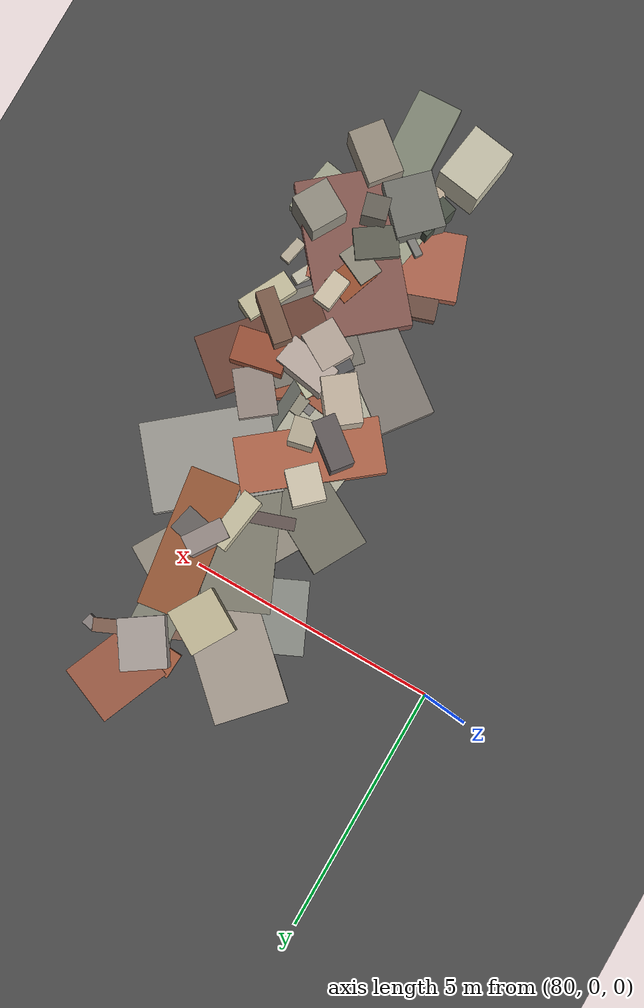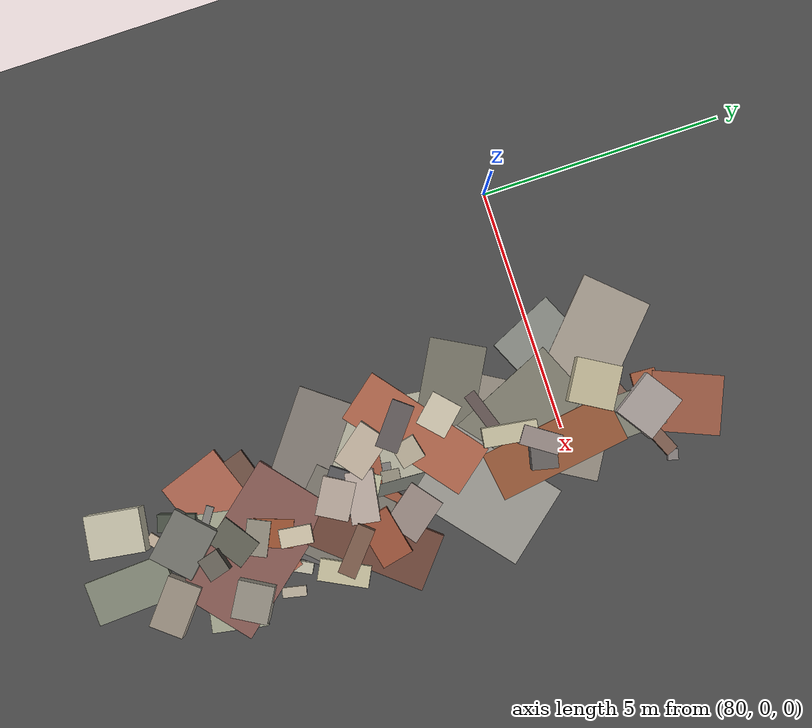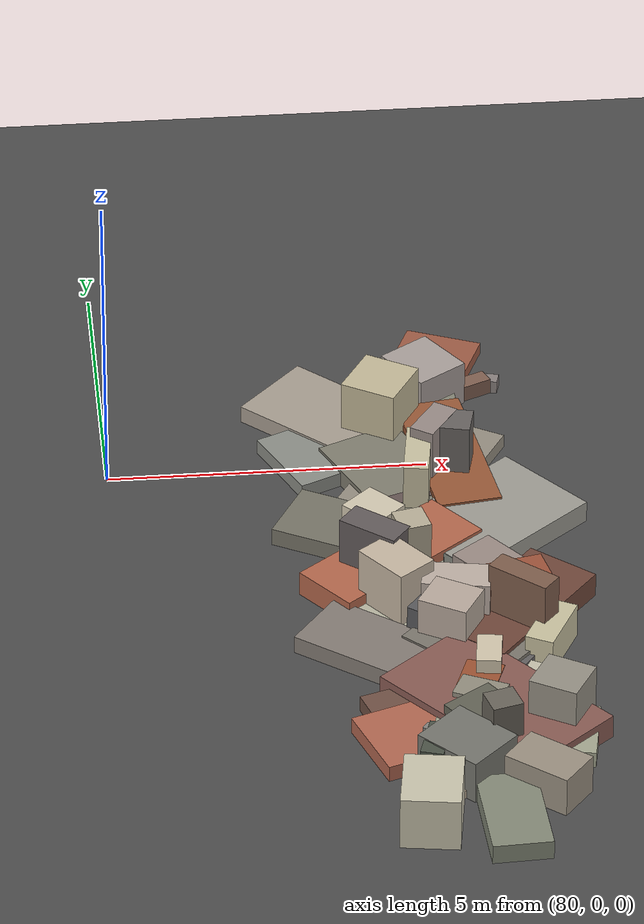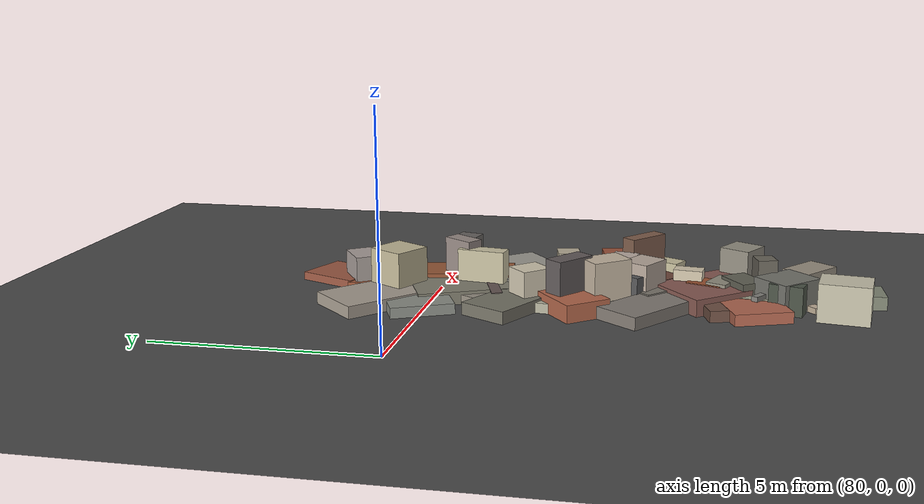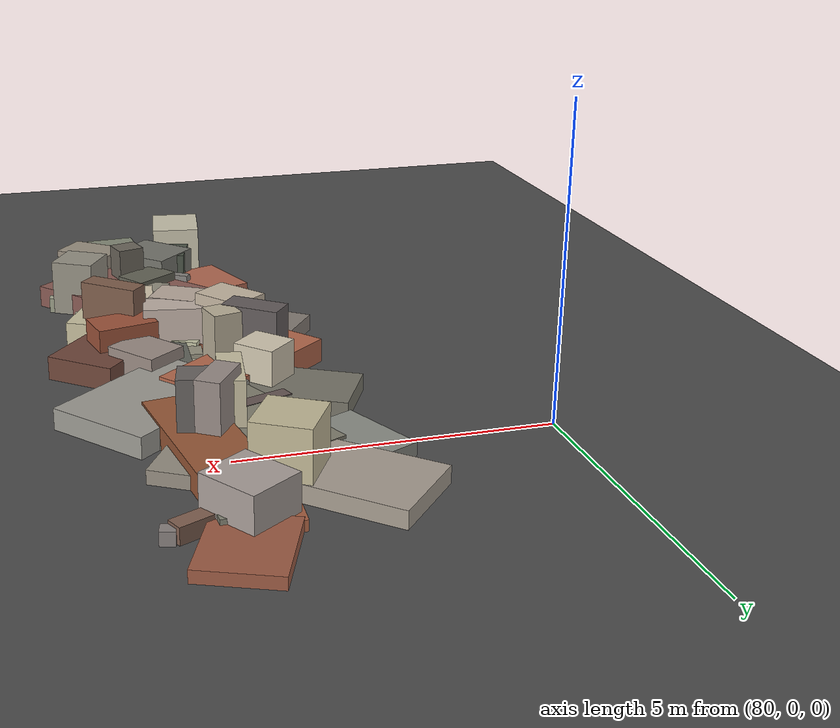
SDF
<sdf version="1.6">
 <world name="navitas_arena">
  <model name="ground_plane">
   <static>true</static>
   <link name="link">
    <collision name="collision">
     <geometry><plane><normal>0 0 1</normal><size>400 400</size></plane></geometry>
     <surface><friction><ode><mu>0.800</mu><mu2>0.800</mu2></ode></friction></surface>
    </collision>
    <visual name="visual">
     <cast_shadows>false</cast_shadows>
     <geometry><plane><normal>0 0 1</normal><size>400 400</size></plane></geometry>
     <material>
      <specular>0.04 0.04 0.04 1</specular>
      <script>
       <uri>file://media/materials/scripts/navitas_asphalt.material</uri>
       <name>Navitas/RealArenaAsphalt</name>
      </script>
     </material>
    </visual>
   </link>
  </model>
  <model name="deb_zor_17">
   <static>true</static>
   <pose>85.336 -7.135 0.000 0 0 0</pose>
   <link name="link">
    <collision name="col_0">
     <pose>-0.490 -0.852 0.349 0.000 0.000 2.342</pose>
     <geometry><box><size>1.116 0.963 0.698</size></box></geometry>
    </collision>
    <visual name="vis_0">
     <pose>-0.490 -0.852 0.349 0.000 0.000 2.342</pose>
     <geometry><box><size>1.116 0.963 0.698</size></box></geometry>
     <material>
      <ambient>0.43 0.43 0.40 1</ambient>
      <diffuse>0.46 0.46 0.43 1</diffuse>
      <specular>0.05 0.05 0.045 1</specular>
     </material>
    </visual>
    <collision name="col_1">
     <pose>-0.131 0.920 0.205 0.000 0.000 2.794</pose>
     <geometry><box><size>0.585 0.825 0.410</size></box></geometry>
    </collision>
    <visual name="vis_1">
     <pose>-0.131 0.920 0.205 0.000 0.000 2.794</pose>
     <geometry><box><size>0.585 0.825 0.410</size></box></geometry>
     <material>
      <ambient>0.57 0.31 0.18 1</ambient>
      <diffuse>0.62 0.33 0.20 1</diffuse>
      <specular>0.05 0.05 0.045 1</specular>
     </material>
    </visual>
    <collision name="col_2">
     <pose>0.217 0.662 0.092 0.000 0.000 2.014</pose>
     <geometry><box><size>0.516 0.419 0.183</size></box></geometry>
    </collision>
    <visual name="vis_2">
     <pose>0.217 0.662 0.092 0.000 0.000 2.014</pose>
     <geometry><box><size>0.516 0.419 0.183</size></box></geometry>
     <material>
      <ambient>0.44 0.33 0.27 1</ambient>
      <diffuse>0.47 0.36 0.29 1</diffuse>
      <specular>0.05 0.05 0.045 1</specular>
     </material>
    </visual>
    <collision name="col_3">
     <pose>0.300 0.643 0.067 0.000 0.000 1.648</pose>
     <geometry><box><size>0.379 0.305 0.133</size></box></geometry>
    </collision>
    <visual name="vis_3">
     <pose>0.300 0.643 0.067 0.000 0.000 1.648</pose>
     <geometry><box><size>0.379 0.305 0.133</size></box></geometry>
     <material>
      <ambient>0.76 0.72 0.65 1</ambient>
      <diffuse>0.82 0.78 0.70 1</diffuse>
      <specular>0.05 0.05 0.045 1</specular>
     </material>
    </visual>
    <collision name="col_4">
     <pose>-0.848 0.490 0.129 0.000 0.000 0.316</pose>
     <geometry><box><size>1.876 1.285 0.258</size></box></geometry>
    </collision>
    <visual name="vis_4">
     <pose>-0.848 0.490 0.129 0.000 0.000 0.316</pose>
     <geometry><box><size>1.876 1.285 0.258</size></box></geometry>
     <material>
      <ambient>0.41 0.30 0.25 1</ambient>
      <diffuse>0.44 0.32 0.27 1</diffuse>
      <specular>0.05 0.05 0.045 1</specular>
     </material>
    </visual>
    <collision name="col_5">
     <pose>0.048 0.483 0.188 0.000 0.000 1.282</pose>
     <geometry><box><size>0.915 0.847 0.375</size></box></geometry>
    </collision>
    <visual name="vis_5">
     <pose>0.048 0.483 0.188 0.000 0.000 1.282</pose>
     <geometry><box><size>0.915 0.847 0.375</size></box></geometry>
     <material>
      <ambient>0.44 0.33 0.28 1</ambient>
      <diffuse>0.48 0.36 0.30 1</diffuse>
      <specular>0.05 0.05 0.045 1</specular>
     </material>
    </visual>
   </link>
  </model>
  <model name="deb_zor_21">
   <static>true</static>
   <pose>84.245 0.850 0.000 0 0 0</pose>
   <link name="link">
    <collision name="col_0">
     <pose>-0.684 0.298 0.142 0.000 0.000 2.395</pose>
     <geometry><box><size>2.358 1.461 0.285</size></box></geometry>
    </collision>
    <visual name="vis_0">
     <pose>-0.684 0.298 0.142 0.000 0.000 2.395</pose>
     <geometry><box><size>2.358 1.461 0.285</size></box></geometry>
     <material>
      <ambient>0.61 0.58 0.53 1</ambient>
      <diffuse>0.66 0.62 0.57 1</diffuse>
      <specular>0.05 0.05 0.045 1</specular>
     </material>
    </visual>
    <collision name="col_1">
     <pose>-0.534 -0.505 0.122 0.000 0.000 3.574</pose>
     <geometry><box><size>2.253 1.442 0.245</size></box></geometry>
    </collision>
    <visual name="vis_1">
     <pose>-0.534 -0.505 0.122 0.000 0.000 3.574</pose>
     <geometry><box><size>2.253 1.442 0.245</size></box></geometry>
     <material>
      <ambient>0.51 0.52 0.49 1</ambient>
      <diffuse>0.55 0.56 0.53 1</diffuse>
      <specular>0.05 0.05 0.045 1</specular>
     </material>
    </visual>
    <collision name="col_2">
     <pose>0.404 -0.362 0.112 0.000 0.000 2.040</pose>
     <geometry><box><size>0.455 0.371 0.224</size></box></geometry>
    </collision>
    <visual name="vis_2">
     <pose>0.404 -0.362 0.112 0.000 0.000 2.040</pose>
     <geometry><box><size>0.455 0.371 0.224</size></box></geometry>
     <material>
      <ambient>0.46 0.45 0.45 1</ambient>
      <diffuse>0.50 0.49 0.49 1</diffuse>
      <specular>0.05 0.05 0.045 1</specular>
     </material>
    </visual>
    <collision name="col_3">
     <pose>0.593 0.104 0.087 0.000 0.000 2.741</pose>
     <geometry><box><size>1.558 0.175 0.175</size></box></geometry>
    </collision>
    <visual name="vis_3">
     <pose>0.593 0.104 0.087 0.000 0.000 2.741</pose>
     <geometry><box><size>1.558 0.175 0.175</size></box></geometry>
     <material>
      <ambient>0.63 0.58 0.52 1</ambient>
      <diffuse>0.68 0.63 0.56 1</diffuse>
      <specular>0.05 0.05 0.045 1</specular>
     </material>
    </visual>
    <collision name="col_4">
     <pose>0.110 0.022 0.553 0.000 0.000 2.609</pose>
     <geometry><box><size>0.909 0.928 1.107</size></box></geometry>
    </collision>
    <visual name="vis_4">
     <pose>0.110 0.022 0.553 0.000 0.000 2.609</pose>
     <geometry><box><size>0.909 0.928 1.107</size></box></geometry>
     <material>
      <ambient>0.71 0.67 0.56 1</ambient>
      <diffuse>0.77 0.73 0.60 1</diffuse>
      <specular>0.05 0.05 0.045 1</specular>
     </material>
    </visual>
   </link>
  </model>
  <model name="deb_zor_48">
   <static>true</static>
   <pose>84.981 -8.567 0.000 0 0 0</pose>
   <link name="link">
    <collision name="col_0">
     <pose>-0.775 -0.640 0.434 0.000 0.000 1.425</pose>
     <geometry><box><size>1.127 0.895 0.868</size></box></geometry>
    </collision>
    <visual name="vis_0">
     <pose>-0.775 -0.640 0.434 0.000 0.000 1.425</pose>
     <geometry><box><size>1.127 0.895 0.868</size></box></geometry>
     <material>
      <ambient>0.73 0.72 0.63 1</ambient>
      <diffuse>0.79 0.77 0.68 1</diffuse>
      <specular>0.05 0.05 0.045 1</specular>
     </material>
    </visual>
    <collision name="col_1">
     <pose>-0.592 0.585 0.338 0.000 0.000 1.279</pose>
     <geometry><box><size>0.768 0.353 0.676</size></box></geometry>
    </collision>
    <visual name="vis_1">
     <pose>-0.592 0.585 0.338 0.000 0.000 1.279</pose>
     <geometry><box><size>0.768 0.353 0.676</size></box></geometry>
     <material>
      <ambient>0.28 0.30 0.26 1</ambient>
      <diffuse>0.30 0.33 0.28 1</diffuse>
      <specular>0.05 0.05 0.045 1</specular>
     </material>
    </visual>
    <collision name="col_2">
     <pose>1.011 0.032 0.323 0.000 0.000 2.458</pose>
     <geometry><box><size>1.090 0.713 0.647</size></box></geometry>
    </collision>
    <visual name="vis_2">
     <pose>1.011 0.032 0.323 0.000 0.000 2.458</pose>
     <geometry><box><size>1.090 0.713 0.647</size></box></geometry>
     <material>
      <ambient>0.56 0.53 0.47 1</ambient>
      <diffuse>0.61 0.57 0.51 1</diffuse>
      <specular>0.05 0.05 0.045 1</specular>
     </material>
    </visual>
    <collision name="col_3">
     <pose>-0.359 -0.014 0.069 0.000 0.000 3.853</pose>
     <geometry><box><size>0.318 0.231 0.138</size></box></geometry>
    </collision>
    <visual name="vis_3">
     <pose>-0.359 -0.014 0.069 0.000 0.000 3.853</pose>
     <geometry><box><size>0.318 0.231 0.138</size></box></geometry>
     <material>
      <ambient>0.71 0.65 0.57 1</ambient>
      <diffuse>0.77 0.70 0.61 1</diffuse>
      <specular>0.05 0.05 0.045 1</specular>
     </material>
    </visual>
    <collision name="col_4">
     <pose>0.421 -0.750 0.156 0.000 0.000 1.622</pose>
     <geometry><box><size>1.702 0.910 0.312</size></box></geometry>
    </collision>
    <visual name="vis_4">
     <pose>0.421 -0.750 0.156 0.000 0.000 1.622</pose>
     <geometry><box><size>1.702 0.910 0.312</size></box></geometry>
     <material>
      <ambient>0.48 0.50 0.44 1</ambient>
      <diffuse>0.52 0.54 0.47 1</diffuse>
      <specular>0.05 0.05 0.045 1</specular>
     </material>
    </visual>
   </link>
  </model>
  <model name="deb_zor_133">
   <static>true</static>
   <pose>84.494 -4.120 0.000 0 0 0</pose>
   <link name="link">
    <collision name="col_0">
     <pose>-0.317 0.536 0.116 0.000 0.000 1.449</pose>
     <geometry><box><size>2.592 1.792 0.231</size></box></geometry>
    </collision>
    <visual name="vis_0">
     <pose>-0.317 0.536 0.116 0.000 0.000 1.449</pose>
     <geometry><box><size>2.592 1.792 0.231</size></box></geometry>
     <material>
      <ambient>0.67 0.66 0.58 1</ambient>
      <diffuse>0.72 0.71 0.63 1</diffuse>
      <specular>0.05 0.05 0.045 1</specular>
     </material>
    </visual>
    <collision name="col_1">
     <pose>-0.334 0.149 0.564 0.000 0.000 2.229</pose>
     <geometry><box><size>0.952 0.682 1.128</size></box></geometry>
    </collision>
    <visual name="vis_1">
     <pose>-0.334 0.149 0.564 0.000 0.000 2.229</pose>
     <geometry><box><size>0.952 0.682 1.128</size></box></geometry>
     <material>
      <ambient>0.72 0.67 0.59 1</ambient>
      <diffuse>0.78 0.72 0.64 1</diffuse>
      <specular>0.05 0.05 0.045 1</specular>
     </material>
    </visual>
    <collision name="col_2">
     <pose>0.421 0.024 0.115 0.000 0.000 2.552</pose>
     <geometry><box><size>0.451 0.174 0.230</size></box></geometry>
    </collision>
    <visual name="vis_2">
     <pose>0.421 0.024 0.115 0.000 0.000 2.552</pose>
     <geometry><box><size>0.451 0.174 0.230</size></box></geometry>
     <material>
      <ambient>0.50 0.47 0.44 1</ambient>
      <diffuse>0.54 0.51 0.48 1</diffuse>
      <specular>0.05 0.05 0.045 1</specular>
     </material>
    </visual>
    <collision name="col_3">
     <pose>-0.587 0.930 0.592 0.000 0.000 2.470</pose>
     <geometry><box><size>0.991 0.465 1.184</size></box></geometry>
    </collision>
    <visual name="vis_3">
     <pose>-0.587 0.930 0.592 0.000 0.000 2.470</pose>
     <geometry><box><size>0.991 0.465 1.184</size></box></geometry>
     <material>
      <ambient>0.36 0.34 0.33 1</ambient>
      <diffuse>0.39 0.36 0.36 1</diffuse>
      <specular>0.05 0.05 0.045 1</specular>
     </material>
    </visual>
    <collision name="col_4">
     <pose>-0.526 -1.025 0.145 0.000 0.000 2.494</pose>
     <geometry><box><size>2.713 1.148 0.290</size></box></geometry>
    </collision>
    <visual name="vis_4">
     <pose>-0.526 -1.025 0.145 0.000 0.000 2.494</pose>
     <geometry><box><size>2.713 1.148 0.290</size></box></geometry>
     <material>
      <ambient>0.48 0.45 0.43 1</ambient>
      <diffuse>0.52 0.49 0.46 1</diffuse>
      <specular>0.05 0.05 0.045 1</specular>
     </material>
    </visual>
    <collision name="col_5">
     <pose>-0.357 -1.013 0.138 0.000 0.000 3.281</pose>
     <geometry><box><size>0.263 0.195 0.275</size></box></geometry>
    </collision>
    <visual name="vis_5">
     <pose>-0.357 -1.013 0.138 0.000 0.000 3.281</pose>
     <geometry><box><size>0.263 0.195 0.275</size></box></geometry>
     <material>
      <ambient>0.35 0.34 0.32 1</ambient>
      <diffuse>0.38 0.37 0.35 1</diffuse>
      <specular>0.05 0.05 0.045 1</specular>
     </material>
    </visual>
   </link>
  </model>
  <model name="deb_zor_183">
   <static>true</static>
   <pose>85.524 1.776 0.000 0 0 0</pose>
   <link name="link">
    <collision name="col_0">
     <pose>-0.200 0.789 0.096 0.000 0.000 1.176</pose>
     <geometry><box><size>1.469 1.223 0.193</size></box></geometry>
    </collision>
    <visual name="vis_0">
     <pose>-0.200 0.789 0.096 0.000 0.000 1.176</pose>
     <geometry><box><size>1.469 1.223 0.193</size></box></geometry>
     <material>
      <ambient>0.58 0.33 0.25 1</ambient>
      <diffuse>0.62 0.36 0.27 1</diffuse>
      <specular>0.05 0.05 0.045 1</specular>
     </material>
    </visual>
    <collision name="col_1">
     <pose>-0.505 -0.328 0.091 0.000 0.000 1.206</pose>
     <geometry><box><size>0.194 0.192 0.182</size></box></geometry>
    </collision>
    <visual name="vis_1">
     <pose>-0.505 -0.328 0.091 0.000 0.000 1.206</pose>
     <geometry><box><size>0.194 0.192 0.182</size></box></geometry>
     <material>
      <ambient>0.37 0.37 0.34 1</ambient>
      <diffuse>0.40 0.40 0.37 1</diffuse>
      <specular>0.05 0.05 0.045 1</specular>
     </material>
    </visual>
    <collision name="col_2">
     <pose>-0.399 0.015 0.379 0.000 0.000 -0.979</pose>
     <geometry><box><size>0.992 0.897 0.758</size></box></geometry>
    </collision>
    <visual name="vis_2">
     <pose>-0.399 0.015 0.379 0.000 0.000 -0.979</pose>
     <geometry><box><size>0.992 0.897 0.758</size></box></geometry>
     <material>
      <ambient>0.62 0.58 0.57 1</ambient>
      <diffuse>0.67 0.63 0.61 1</diffuse>
      <specular>0.05 0.05 0.045 1</specular>
     </material>
    </visual>
    <collision name="col_3">
     <pose>-0.908 0.140 0.086 0.000 0.000 1.516</pose>
     <geometry><box><size>0.505 0.393 0.171</size></box></geometry>
    </collision>
    <visual name="vis_3">
     <pose>-0.908 0.140 0.086 0.000 0.000 1.516</pose>
     <geometry><box><size>0.505 0.393 0.171</size></box></geometry>
     <material>
      <ambient>0.60 0.34 0.23 1</ambient>
      <diffuse>0.65 0.37 0.25 1</diffuse>
      <specular>0.05 0.05 0.045 1</specular>
     </material>
    </visual>
    <collision name="col_4">
     <pose>-0.158 -0.142 0.132 0.000 0.000 0.424</pose>
     <geometry><box><size>1.752 0.268 0.263</size></box></geometry>
    </collision>
    <visual name="vis_4">
     <pose>-0.158 -0.142 0.132 0.000 0.000 0.424</pose>
     <geometry><box><size>1.752 0.268 0.263</size></box></geometry>
     <material>
      <ambient>0.47 0.35 0.30 1</ambient>
      <diffuse>0.51 0.38 0.32 1</diffuse>
      <specular>0.05 0.05 0.045 1</specular>
     </material>
    </visual>
    <collision name="col_5">
     <pose>0.710 0.206 0.108 0.000 0.000 1.317</pose>
     <geometry><box><size>0.217 0.220 0.216</size></box></geometry>
    </collision>
    <visual name="vis_5">
     <pose>0.710 0.206 0.108 0.000 0.000 1.317</pose>
     <geometry><box><size>0.217 0.220 0.216</size></box></geometry>
     <material>
      <ambient>0.50 0.47 0.46 1</ambient>
      <diffuse>0.54 0.51 0.50 1</diffuse>
      <specular>0.05 0.05 0.045 1</specular>
     </material>
    </visual>
    <collision name="col_6">
     <pose>-0.348 -0.575 0.137 0.000 0.000 1.609</pose>
     <geometry><box><size>1.697 0.876 0.275</size></box></geometry>
    </collision>
    <visual name="vis_6">
     <pose>-0.348 -0.575 0.137 0.000 0.000 1.609</pose>
     <geometry><box><size>1.697 0.876 0.275</size></box></geometry>
     <material>
      <ambient>0.48 0.48 0.43 1</ambient>
      <diffuse>0.52 0.52 0.46 1</diffuse>
      <specular>0.05 0.05 0.045 1</specular>
     </material>
    </visual>
   </link>
  </model>
  <model name="deb_zor_223">
   <static>true</static>
   <pose>84.971 -4.129 0.000 0 0 0</pose>
   <link name="link">
    <collision name="col_0">
     <pose>0.086 -0.124 0.462 0.000 0.000 2.978</pose>
     <geometry><box><size>1.050 0.577 0.924</size></box></geometry>
    </collision>
    <visual name="vis_0">
     <pose>0.086 -0.124 0.462 0.000 0.000 2.978</pose>
     <geometry><box><size>1.050 0.577 0.924</size></box></geometry>
     <material>
      <ambient>0.69 0.63 0.60 1</ambient>
      <diffuse>0.75 0.69 0.65 1</diffuse>
      <specular>0.05 0.05 0.045 1</specular>
     </material>
    </visual>
    <collision name="col_1">
     <pose>-0.803 -0.313 0.082 0.000 0.000 2.327</pose>
     <geometry><box><size>1.939 0.215 0.164</size></box></geometry>
    </collision>
    <visual name="vis_1">
     <pose>-0.803 -0.313 0.082 0.000 0.000 2.327</pose>
     <geometry><box><size>1.939 0.215 0.164</size></box></geometry>
     <material>
      <ambient>0.62 0.35 0.27 1</ambient>
      <diffuse>0.67 0.38 0.29 1</diffuse>
      <specular>0.05 0.05 0.045 1</specular>
     </material>
    </visual>
    <collision name="col_2">
     <pose>0.721 0.749 0.277 0.000 0.000 2.233</pose>
     <geometry><box><size>0.965 0.759 0.553</size></box></geometry>
    </collision>
    <visual name="vis_2">
     <pose>0.721 0.749 0.277 0.000 0.000 2.233</pose>
     <geometry><box><size>0.965 0.759 0.553</size></box></geometry>
     <material>
      <ambient>0.56 0.51 0.48 1</ambient>
      <diffuse>0.61 0.55 0.52 1</diffuse>
      <specular>0.05 0.05 0.045 1</specular>
     </material>
    </visual>
    <collision name="col_3">
     <pose>-0.149 -0.495 0.328 0.000 0.000 2.513</pose>
     <geometry><box><size>0.841 0.746 0.657</size></box></geometry>
    </collision>
    <visual name="vis_3">
     <pose>-0.149 -0.495 0.328 0.000 0.000 2.513</pose>
     <geometry><box><size>0.841 0.746 0.657</size></box></geometry>
     <material>
      <ambient>0.32 0.33 0.34 1</ambient>
      <diffuse>0.35 0.35 0.36 1</diffuse>
      <specular>0.05 0.05 0.045 1</specular>
     </material>
    </visual>
    <collision name="col_4">
     <pose>0.262 0.016 0.150 0.000 0.000 2.878</pose>
     <geometry><box><size>0.446 0.474 0.299</size></box></geometry>
    </collision>
    <visual name="vis_4">
     <pose>0.262 0.016 0.150 0.000 0.000 2.878</pose>
     <geometry><box><size>0.446 0.474 0.299</size></box></geometry>
     <material>
      <ambient>0.53 0.52 0.44 1</ambient>
      <diffuse>0.57 0.56 0.48 1</diffuse>
      <specular>0.05 0.05 0.045 1</specular>
     </material>
    </visual>
    <collision name="col_5">
     <pose>-0.057 0.521 0.156 0.000 0.000 3.019</pose>
     <geometry><box><size>0.378 0.383 0.312</size></box></geometry>
    </collision>
    <visual name="vis_5">
     <pose>-0.057 0.521 0.156 0.000 0.000 3.019</pose>
     <geometry><box><size>0.378 0.383 0.312</size></box></geometry>
     <material>
      <ambient>0.54 0.53 0.46 1</ambient>
      <diffuse>0.59 0.57 0.50 1</diffuse>
      <specular>0.05 0.05 0.045 1</specular>
     </material>
    </visual>
    <collision name="col_6">
     <pose>0.881 -0.104 0.148 0.000 0.000 3.406</pose>
     <geometry><box><size>2.034 0.125 0.297</size></box></geometry>
    </collision>
    <visual name="vis_6">
     <pose>0.881 -0.104 0.148 0.000 0.000 3.406</pose>
     <geometry><box><size>2.034 0.125 0.297</size></box></geometry>
     <material>
      <ambient>0.31 0.29 0.27 1</ambient>
      <diffuse>0.33 0.31 0.29 1</diffuse>
      <specular>0.05 0.05 0.045 1</specular>
     </material>
    </visual>
   </link>
  </model>
  <model name="deb_zor_272">
   <static>true</static>
   <pose>85.916 -5.413 0.000 0 0 0</pose>
   <link name="link">
    <collision name="col_0">
     <pose>0.135 -0.462 0.128 0.000 0.000 1.094</pose>
     <geometry><box><size>0.430 0.231 0.256</size></box></geometry>
    </collision>
    <visual name="vis_0">
     <pose>0.135 -0.462 0.128 0.000 0.000 1.094</pose>
     <geometry><box><size>0.430 0.231 0.256</size></box></geometry>
     <material>
      <ambient>0.72 0.70 0.63 1</ambient>
      <diffuse>0.78 0.76 0.68 1</diffuse>
      <specular>0.05 0.05 0.045 1</specular>
     </material>
    </visual>
    <collision name="col_1">
     <pose>0.111 0.726 0.615 0.000 0.000 2.431</pose>
     <geometry><box><size>1.040 0.370 1.231</size></box></geometry>
    </collision>
    <visual name="vis_1">
     <pose>0.111 0.726 0.615 0.000 0.000 2.431</pose>
     <geometry><box><size>1.040 0.370 1.231</size></box></geometry>
     <material>
      <ambient>0.47 0.34 0.28 1</ambient>
      <diffuse>0.50 0.37 0.30 1</diffuse>
      <specular>0.05 0.05 0.045 1</specular>
     </material>
    </visual>
    <collision name="col_2">
     <pose>0.496 0.320 0.288 0.000 0.000 1.098</pose>
     <geometry><box><size>1.047 0.450 0.576</size></box></geometry>
    </collision>
    <visual name="vis_2">
     <pose>0.496 0.320 0.288 0.000 0.000 1.098</pose>
     <geometry><box><size>1.047 0.450 0.576</size></box></geometry>
     <material>
      <ambient>0.73 0.70 0.58 1</ambient>
      <diffuse>0.79 0.76 0.63 1</diffuse>
      <specular>0.05 0.05 0.045 1</specular>
     </material>
    </visual>
    <collision name="col_3">
     <pose>-0.520 -0.371 0.322 0.000 0.000 1.442</pose>
     <geometry><box><size>0.665 0.380 0.643</size></box></geometry>
    </collision>
    <visual name="vis_3">
     <pose>-0.520 -0.371 0.322 0.000 0.000 1.442</pose>
     <geometry><box><size>0.665 0.380 0.643</size></box></geometry>
     <material>
      <ambient>0.77 0.72 0.63 1</ambient>
      <diffuse>0.83 0.78 0.68 1</diffuse>
      <specular>0.05 0.05 0.045 1</specular>
     </material>
    </visual>
    <collision name="col_4">
     <pose>-0.122 0.482 0.069 0.000 0.000 1.553</pose>
     <geometry><box><size>1.709 0.260 0.137</size></box></geometry>
    </collision>
    <visual name="vis_4">
     <pose>-0.122 0.482 0.069 0.000 0.000 1.553</pose>
     <geometry><box><size>1.709 0.260 0.137</size></box></geometry>
     <material>
      <ambient>0.63 0.35 0.25 1</ambient>
      <diffuse>0.68 0.38 0.27 1</diffuse>
      <specular>0.05 0.05 0.045 1</specular>
     </material>
    </visual>
    <collision name="col_5">
     <pose>0.044 -0.132 0.132 0.000 0.000 0.931</pose>
     <geometry><box><size>1.833 0.233 0.263</size></box></geometry>
    </collision>
    <visual name="vis_5">
     <pose>0.044 -0.132 0.132 0.000 0.000 0.931</pose>
     <geometry><box><size>1.833 0.233 0.263</size></box></geometry>
     <material>
      <ambient>0.36 0.35 0.35 1</ambient>
      <diffuse>0.39 0.38 0.38 1</diffuse>
      <specular>0.05 0.05 0.045 1</specular>
     </material>
    </visual>
    <collision name="col_6">
     <pose>0.116 0.463 0.150 0.000 0.000 2.343</pose>
     <geometry><box><size>0.202 0.188 0.300</size></box></geometry>
    </collision>
    <visual name="vis_6">
     <pose>0.116 0.463 0.150 0.000 0.000 2.343</pose>
     <geometry><box><size>0.202 0.188 0.300</size></box></geometry>
     <material>
      <ambient>0.54 0.52 0.48 1</ambient>
      <diffuse>0.58 0.56 0.52 1</diffuse>
      <specular>0.05 0.05 0.045 1</specular>
     </material>
    </visual>
   </link>
  </model>
  <model name="deb_zor_289">
   <static>true</static>
   <pose>84.872 -3.870 0.000 0 0 0</pose>
   <link name="link">
    <collision name="col_0">
     <pose>0.047 -0.902 0.463 0.000 0.000 -0.523</pose>
     <geometry><box><size>0.798 0.682 0.926</size></box></geometry>
    </collision>
    <visual name="vis_0">
     <pose>0.047 -0.902 0.463 0.000 0.000 -0.523</pose>
     <geometry><box><size>0.798 0.682 0.926</size></box></geometry>
     <material>
      <ambient>0.67 0.62 0.57 1</ambient>
      <diffuse>0.73 0.67 0.62 1</diffuse>
      <specular>0.05 0.05 0.045 1</specular>
     </material>
    </visual>
    <collision name="col_1">
     <pose>0.219 0.542 0.174 0.000 0.000 1.519</pose>
     <geometry><box><size>2.152 0.241 0.348</size></box></geometry>
    </collision>
    <visual name="vis_1">
     <pose>0.219 0.542 0.174 0.000 0.000 1.519</pose>
     <geometry><box><size>2.152 0.241 0.348</size></box></geometry>
     <material>
      <ambient>0.35 0.36 0.33 1</ambient>
      <diffuse>0.38 0.39 0.36 1</diffuse>
      <specular>0.05 0.05 0.045 1</specular>
     </material>
    </visual>
    <collision name="col_2">
     <pose>0.960 -0.194 0.132 0.000 0.000 2.020</pose>
     <geometry><box><size>0.283 0.206 0.264</size></box></geometry>
    </collision>
    <visual name="vis_2">
     <pose>0.960 -0.194 0.132 0.000 0.000 2.020</pose>
     <geometry><box><size>0.283 0.206 0.264</size></box></geometry>
     <material>
      <ambient>0.65 0.63 0.53 1</ambient>
      <diffuse>0.70 0.68 0.57 1</diffuse>
      <specular>0.05 0.05 0.045 1</specular>
     </material>
    </visual>
    <collision name="col_3">
     <pose>0.485 -0.055 0.141 0.000 0.000 -0.138</pose>
     <geometry><box><size>2.307 0.212 0.281</size></box></geometry>
    </collision>
    <visual name="vis_3">
     <pose>0.485 -0.055 0.141 0.000 0.000 -0.138</pose>
     <geometry><box><size>2.307 0.212 0.281</size></box></geometry>
     <material>
      <ambient>0.60 0.34 0.25 1</ambient>
      <diffuse>0.65 0.37 0.27 1</diffuse>
      <specular>0.05 0.05 0.045 1</specular>
     </material>
    </visual>
    <collision name="col_4">
     <pose>-0.301 -0.265 0.060 0.000 0.000 -0.447</pose>
     <geometry><box><size>2.206 0.313 0.121</size></box></geometry>
    </collision>
    <visual name="vis_4">
     <pose>-0.301 -0.265 0.060 0.000 0.000 -0.447</pose>
     <geometry><box><size>2.206 0.313 0.121</size></box></geometry>
     <material>
      <ambient>0.41 0.28 0.22 1</ambient>
      <diffuse>0.45 0.30 0.24 1</diffuse>
      <specular>0.05 0.05 0.045 1</specular>
     </material>
    </visual>
   </link>
  </model>
  <model name="deb_zor_291">
   <static>true</static>
   <pose>85.920 -6.839 0.000 0 0 0</pose>
   <link name="link">
    <collision name="col_0">
     <pose>0.565 0.635 0.061 0.000 0.000 1.361</pose>
     <geometry><box><size>0.500 0.210 0.122</size></box></geometry>
    </collision>
    <visual name="vis_0">
     <pose>0.565 0.635 0.061 0.000 0.000 1.361</pose>
     <geometry><box><size>0.500 0.210 0.122</size></box></geometry>
     <material>
      <ambient>0.68 0.65 0.58 1</ambient>
      <diffuse>0.74 0.70 0.62 1</diffuse>
      <specular>0.05 0.05 0.045 1</specular>
     </material>
    </visual>
    <collision name="col_1">
     <pose>-0.754 -0.575 0.127 0.000 0.000 -0.036</pose>
     <geometry><box><size>0.409 0.455 0.254</size></box></geometry>
    </collision>
    <visual name="vis_1">
     <pose>-0.754 -0.575 0.127 0.000 0.000 -0.036</pose>
     <geometry><box><size>0.409 0.455 0.254</size></box></geometry>
     <material>
      <ambient>0.75 0.68 0.61 1</ambient>
      <diffuse>0.81 0.74 0.66 1</diffuse>
      <specular>0.05 0.05 0.045 1</specular>
     </material>
    </visual>
    <collision name="col_2">
     <pose>-0.798 -0.190 0.273 0.000 0.000 0.603</pose>
     <geometry><box><size>0.862 0.620 0.546</size></box></geometry>
    </collision>
    <visual name="vis_2">
     <pose>-0.798 -0.190 0.273 0.000 0.000 0.603</pose>
     <geometry><box><size>0.862 0.620 0.546</size></box></geometry>
     <material>
      <ambient>0.37 0.36 0.31 1</ambient>
      <diffuse>0.39 0.39 0.34 1</diffuse>
      <specular>0.05 0.05 0.045 1</specular>
     </material>
    </visual>
    <collision name="col_3">
     <pose>-0.500 -0.660 0.486 0.000 0.000 1.845</pose>
     <geometry><box><size>0.452 0.482 0.972</size></box></geometry>
    </collision>
    <visual name="vis_3">
     <pose>-0.500 -0.660 0.486 0.000 0.000 1.845</pose>
     <geometry><box><size>0.452 0.482 0.972</size></box></geometry>
     <material>
      <ambient>0.39 0.37 0.33 1</ambient>
      <diffuse>0.42 0.40 0.36 1</diffuse>
      <specular>0.05 0.05 0.045 1</specular>
     </material>
    </visual>
    <collision name="col_4">
     <pose>0.443 -0.148 0.491 0.000 0.000 -0.525</pose>
     <geometry><box><size>0.772 0.746 0.982</size></box></geometry>
    </collision>
    <visual name="vis_4">
     <pose>0.443 -0.148 0.491 0.000 0.000 -0.525</pose>
     <geometry><box><size>0.772 0.746 0.982</size></box></geometry>
     <material>
      <ambient>0.54 0.52 0.48 1</ambient>
      <diffuse>0.59 0.57 0.52 1</diffuse>
      <specular>0.05 0.05 0.045 1</specular>
     </material>
    </visual>
   </link>
  </model>
  <model name="deb_zor_328">
   <static>true</static>
   <pose>85.364 -7.280 0.000 0 0 0</pose>
   <link name="link">
    <collision name="col_0">
     <pose>-0.108 -0.633 0.188 0.000 0.000 2.550</pose>
     <geometry><box><size>2.331 0.159 0.377</size></box></geometry>
    </collision>
    <visual name="vis_0">
     <pose>-0.108 -0.633 0.188 0.000 0.000 2.550</pose>
     <geometry><box><size>2.331 0.159 0.377</size></box></geometry>
     <material>
      <ambient>0.48 0.47 0.45 1</ambient>
      <diffuse>0.52 0.51 0.49 1</diffuse>
      <specular>0.05 0.05 0.045 1</specular>
     </material>
    </visual>
    <collision name="col_1">
     <pose>0.234 -0.162 0.106 0.000 0.000 3.846</pose>
     <geometry><box><size>1.869 0.784 0.212</size></box></geometry>
    </collision>
    <visual name="vis_1">
     <pose>0.234 -0.162 0.106 0.000 0.000 3.846</pose>
     <geometry><box><size>1.869 0.784 0.212</size></box></geometry>
     <material>
      <ambient>0.38 0.34 0.32 1</ambient>
      <diffuse>0.41 0.37 0.34 1</diffuse>
      <specular>0.05 0.05 0.045 1</specular>
     </material>
    </visual>
    <collision name="col_2">
     <pose>0.300 0.029 0.134 0.000 0.000 2.963</pose>
     <geometry><box><size>2.431 1.151 0.269</size></box></geometry>
    </collision>
    <visual name="vis_2">
     <pose>0.300 0.029 0.134 0.000 0.000 2.963</pose>
     <geometry><box><size>2.431 1.151 0.269</size></box></geometry>
     <material>
      <ambient>0.60 0.61 0.53 1</ambient>
      <diffuse>0.65 0.66 0.57 1</diffuse>
      <specular>0.05 0.05 0.045 1</specular>
     </material>
    </visual>
    <collision name="col_3">
     <pose>-0.172 0.727 0.235 0.000 0.000 2.703</pose>
     <geometry><box><size>0.735 0.487 0.471</size></box></geometry>
    </collision>
    <visual name="vis_3">
     <pose>-0.172 0.727 0.235 0.000 0.000 2.703</pose>
     <geometry><box><size>0.735 0.487 0.471</size></box></geometry>
     <material>
      <ambient>0.54 0.52 0.47 1</ambient>
      <diffuse>0.58 0.56 0.50 1</diffuse>
      <specular>0.05 0.05 0.045 1</specular>
     </material>
    </visual>
    <collision name="col_4">
     <pose>-0.569 0.214 0.103 0.000 0.000 2.960</pose>
     <geometry><box><size>0.360 0.182 0.206</size></box></geometry>
    </collision>
    <visual name="vis_4">
     <pose>-0.569 0.214 0.103 0.000 0.000 2.960</pose>
     <geometry><box><size>0.360 0.182 0.206</size></box></geometry>
     <material>
      <ambient>0.64 0.38 0.28 1</ambient>
      <diffuse>0.70 0.42 0.30 1</diffuse>
      <specular>0.05 0.05 0.045 1</specular>
     </material>
    </visual>
    <collision name="col_5">
     <pose>-0.530 0.300 0.130 0.000 0.000 3.488</pose>
     <geometry><box><size>2.948 1.331 0.261</size></box></geometry>
    </collision>
    <visual name="vis_5">
     <pose>-0.530 0.300 0.130 0.000 0.000 3.488</pose>
     <geometry><box><size>2.948 1.331 0.261</size></box></geometry>
     <material>
      <ambient>0.64 0.38 0.30 1</ambient>
      <diffuse>0.70 0.41 0.32 1</diffuse>
      <specular>0.05 0.05 0.045 1</specular>
     </material>
    </visual>
    <collision name="col_6">
     <pose>0.048 0.614 0.194 0.000 0.000 2.268</pose>
     <geometry><box><size>3.144 1.760 0.389</size></box></geometry>
    </collision>
    <visual name="vis_6">
     <pose>0.048 0.614 0.194 0.000 0.000 2.268</pose>
     <geometry><box><size>3.144 1.760 0.389</size></box></geometry>
     <material>
      <ambient>0.50 0.34 0.30 1</ambient>
      <diffuse>0.54 0.36 0.33 1</diffuse>
      <specular>0.05 0.05 0.045 1</specular>
     </material>
    </visual>
   </link>
  </model>
  <model name="deb_zor_358">
   <static>true</static>
   <pose>85.084 -0.811 0.000 0 0 0</pose>
   <link name="link">
    <collision name="col_0">
     <pose>-0.015 0.306 0.606 0.000 0.000 0.978</pose>
     <geometry><box><size>0.800 0.403 1.213</size></box></geometry>
    </collision>
    <visual name="vis_0">
     <pose>-0.015 0.306 0.606 0.000 0.000 0.978</pose>
     <geometry><box><size>0.800 0.403 1.213</size></box></geometry>
     <material>
      <ambient>0.55 0.51 0.49 1</ambient>
      <diffuse>0.60 0.55 0.53 1</diffuse>
      <specular>0.05 0.05 0.045 1</specular>
     </material>
    </visual>
    <collision name="col_1">
     <pose>-0.286 0.266 0.113 0.000 0.000 1.039</pose>
     <geometry><box><size>3.040 1.627 0.226</size></box></geometry>
    </collision>
    <visual name="vis_1">
     <pose>-0.286 0.266 0.113 0.000 0.000 1.039</pose>
     <geometry><box><size>3.040 1.627 0.226</size></box></geometry>
     <material>
      <ambient>0.55 0.52 0.47 1</ambient>
      <diffuse>0.59 0.56 0.51 1</diffuse>
      <specular>0.05 0.05 0.045 1</specular>
     </material>
    </visual>
    <collision name="col_2">
     <pose>-0.644 0.157 0.149 0.000 0.000 1.992</pose>
     <geometry><box><size>2.373 1.361 0.298</size></box></geometry>
    </collision>
    <visual name="vis_2">
     <pose>-0.644 0.157 0.149 0.000 0.000 1.992</pose>
     <geometry><box><size>2.373 1.361 0.298</size></box></geometry>
     <material>
      <ambient>0.47 0.46 0.41 1</ambient>
      <diffuse>0.51 0.50 0.44 1</diffuse>
      <specular>0.05 0.05 0.045 1</specular>
     </material>
    </visual>
    <collision name="col_3">
     <pose>0.277 0.269 0.604 0.000 0.000 1.350</pose>
     <geometry><box><size>0.533 0.594 1.208</size></box></geometry>
    </collision>
    <visual name="vis_3">
     <pose>0.277 0.269 0.604 0.000 0.000 1.350</pose>
     <geometry><box><size>0.533 0.594 1.208</size></box></geometry>
     <material>
      <ambient>0.38 0.36 0.35 1</ambient>
      <diffuse>0.41 0.39 0.38 1</diffuse>
      <specular>0.05 0.05 0.045 1</specular>
     </material>
    </visual>
    <collision name="col_4">
     <pose>0.248 0.561 0.197 0.000 0.000 1.716</pose>
     <geometry><box><size>2.787 1.017 0.394</size></box></geometry>
    </collision>
    <visual name="vis_4">
     <pose>0.248 0.561 0.197 0.000 0.000 1.716</pose>
     <geometry><box><size>2.787 1.017 0.394</size></box></geometry>
     <material>
      <ambient>0.55 0.33 0.20 1</ambient>
      <diffuse>0.60 0.35 0.22 1</diffuse>
      <specular>0.05 0.05 0.045 1</specular>
     </material>
    </visual>
    <collision name="col_5">
     <pose>-0.314 -0.233 0.522 0.000 0.000 1.426</pose>
     <geometry><box><size>1.121 0.390 1.045</size></box></geometry>
    </collision>
    <visual name="vis_5">
     <pose>-0.314 -0.233 0.522 0.000 0.000 1.426</pose>
     <geometry><box><size>1.121 0.390 1.045</size></box></geometry>
     <material>
      <ambient>0.73 0.70 0.59 1</ambient>
      <diffuse>0.79 0.76 0.64 1</diffuse>
      <specular>0.05 0.05 0.045 1</specular>
     </material>
    </visual>
    <collision name="col_6">
     <pose>-0.414 -0.448 0.154 0.000 0.000 0.331</pose>
     <geometry><box><size>1.908 0.248 0.308</size></box></geometry>
    </collision>
    <visual name="vis_6">
     <pose>-0.414 -0.448 0.154 0.000 0.000 0.331</pose>
     <geometry><box><size>1.908 0.248 0.308</size></box></geometry>
     <material>
      <ambient>0.37 0.32 0.31 1</ambient>
      <diffuse>0.40 0.34 0.33 1</diffuse>
      <specular>0.05 0.05 0.045 1</specular>
     </material>
    </visual>
   </link>
  </model>
  <model name="deb_zor_371">
   <static>true</static>
   <pose>85.312 -4.308 0.000 0 0 0</pose>
   <link name="link">
    <collision name="col_0">
     <pose>-0.396 -0.268 0.135 0.000 0.000 1.085</pose>
     <geometry><box><size>1.639 1.002 0.271</size></box></geometry>
    </collision>
    <visual name="vis_0">
     <pose>-0.396 -0.268 0.135 0.000 0.000 1.085</pose>
     <geometry><box><size>1.639 1.002 0.271</size></box></geometry>
     <material>
      <ambient>0.52 0.51 0.49 1</ambient>
      <diffuse>0.56 0.55 0.53 1</diffuse>
      <specular>0.05 0.05 0.045 1</specular>
     </material>
    </visual>
    <collision name="col_1">
     <pose>0.674 0.015 0.199 0.000 0.000 0.871</pose>
     <geometry><box><size>2.502 1.197 0.398</size></box></geometry>
    </collision>
    <visual name="vis_1">
     <pose>0.674 0.015 0.199 0.000 0.000 0.871</pose>
     <geometry><box><size>2.502 1.197 0.398</size></box></geometry>
     <material>
      <ambient>0.41 0.25 0.21 1</ambient>
      <diffuse>0.44 0.28 0.23 1</diffuse>
      <specular>0.05 0.05 0.045 1</specular>
     </material>
    </visual>
    <collision name="col_2">
     <pose>-0.001 0.140 0.184 0.000 0.000 -0.520</pose>
     <geometry><box><size>1.312 0.187 0.368</size></box></geometry>
    </collision>
    <visual name="vis_2">
     <pose>-0.001 0.140 0.184 0.000 0.000 -0.520</pose>
     <geometry><box><size>1.312 0.187 0.368</size></box></geometry>
     <material>
      <ambient>0.70 0.70 0.59 1</ambient>
      <diffuse>0.76 0.76 0.64 1</diffuse>
      <specular>0.05 0.05 0.045 1</specular>
     </material>
    </visual>
    <collision name="col_3">
     <pose>-0.003 -0.058 0.149 0.000 0.000 2.137</pose>
     <geometry><box><size>1.465 1.181 0.297</size></box></geometry>
    </collision>
    <visual name="vis_3">
     <pose>-0.003 -0.058 0.149 0.000 0.000 2.137</pose>
     <geometry><box><size>1.465 1.181 0.297</size></box></geometry>
     <material>
      <ambient>0.58 0.33 0.23 1</ambient>
      <diffuse>0.62 0.35 0.25 1</diffuse>
      <specular>0.05 0.05 0.045 1</specular>
     </material>
    </visual>
    <collision name="col_4">
     <pose>0.096 -0.590 0.162 0.000 0.000 0.807</pose>
     <geometry><box><size>1.793 1.745 0.323</size></box></geometry>
    </collision>
    <visual name="vis_4">
     <pose>0.096 -0.590 0.162 0.000 0.000 0.807</pose>
     <geometry><box><size>1.793 1.745 0.323</size></box></geometry>
     <material>
      <ambient>0.45 0.44 0.40 1</ambient>
      <diffuse>0.49 0.47 0.43 1</diffuse>
      <specular>0.05 0.05 0.045 1</specular>
     </material>
    </visual>
    <collision name="col_5">
     <pose>0.662 0.227 0.390 0.000 0.000 0.217</pose>
     <geometry><box><size>1.030 0.673 0.779</size></box></geometry>
    </collision>
    <visual name="vis_5">
     <pose>0.662 0.227 0.390 0.000 0.000 0.217</pose>
     <geometry><box><size>1.030 0.673 0.779</size></box></geometry>
     <material>
      <ambient>0.58 0.30 0.21 1</ambient>
      <diffuse>0.62 0.33 0.23 1</diffuse>
      <specular>0.05 0.05 0.045 1</specular>
     </material>
    </visual>
    <collision name="col_6">
     <pose>-0.684 0.196 0.122 0.000 0.000 1.427</pose>
     <geometry><box><size>1.151 0.275 0.244</size></box></geometry>
    </collision>
    <visual name="vis_6">
     <pose>-0.684 0.196 0.122 0.000 0.000 1.427</pose>
     <geometry><box><size>1.151 0.275 0.244</size></box></geometry>
     <material>
      <ambient>0.46 0.45 0.44 1</ambient>
      <diffuse>0.50 0.49 0.48 1</diffuse>
      <specular>0.05 0.05 0.045 1</specular>
     </material>
    </visual>
   </link>
  </model>
  <model name="deb_zor_378">
   <static>true</static>
   <pose>84.699 -2.033 0.000 0 0 0</pose>
   <link name="link">
    <collision name="col_0">
     <pose>1.106 0.144 0.178 0.000 0.000 0.693</pose>
     <geometry><box><size>2.527 1.753 0.355</size></box></geometry>
    </collision>
    <visual name="vis_0">
     <pose>1.106 0.144 0.178 0.000 0.000 0.693</pose>
     <geometry><box><size>2.527 1.753 0.355</size></box></geometry>
     <material>
      <ambient>0.58 0.56 0.54 1</ambient>
      <diffuse>0.62 0.61 0.58 1</diffuse>
      <specular>0.05 0.05 0.045 1</specular>
     </material>
    </visual>
    <collision name="col_1">
     <pose>-0.225 -1.062 0.588 0.000 0.000 0.224</pose>
     <geometry><box><size>0.488 0.498 1.176</size></box></geometry>
    </collision>
    <visual name="vis_1">
     <pose>-0.225 -1.062 0.588 0.000 0.000 0.224</pose>
     <geometry><box><size>0.488 0.498 1.176</size></box></geometry>
     <material>
      <ambient>0.67 0.64 0.56 1</ambient>
      <diffuse>0.73 0.69 0.60 1</diffuse>
      <specular>0.05 0.05 0.045 1</specular>
     </material>
    </visual>
    <collision name="col_2">
     <pose>1.062 0.389 0.087 0.000 0.000 -0.873</pose>
     <geometry><box><size>1.758 1.502 0.173</size></box></geometry>
    </collision>
    <visual name="vis_2">
     <pose>1.062 0.389 0.087 0.000 0.000 -0.873</pose>
     <geometry><box><size>1.758 1.502 0.173</size></box></geometry>
     <material>
      <ambient>0.41 0.43 0.40 1</ambient>
      <diffuse>0.45 0.46 0.43 1</diffuse>
      <specular>0.05 0.05 0.045 1</specular>
     </material>
    </visual>
    <collision name="col_3">
     <pose>-0.729 -0.254 0.443 0.000 0.000 0.754</pose>
     <geometry><box><size>0.649 0.720 0.886</size></box></geometry>
    </collision>
    <visual name="vis_3">
     <pose>-0.729 -0.254 0.443 0.000 0.000 0.754</pose>
     <geometry><box><size>0.649 0.720 0.886</size></box></geometry>
     <material>
      <ambient>0.76 0.73 0.65 1</ambient>
      <diffuse>0.83 0.79 0.70 1</diffuse>
      <specular>0.05 0.05 0.045 1</specular>
     </material>
    </visual>
    <collision name="col_4">
     <pose>-0.074 0.460 0.101 0.000 0.000 -0.656</pose>
     <geometry><box><size>1.606 1.305 0.201</size></box></geometry>
    </collision>
    <visual name="vis_4">
     <pose>-0.074 0.460 0.101 0.000 0.000 -0.656</pose>
     <geometry><box><size>1.606 1.305 0.201</size></box></geometry>
     <material>
      <ambient>0.63 0.36 0.26 1</ambient>
      <diffuse>0.68 0.39 0.28 1</diffuse>
      <specular>0.05 0.05 0.045 1</specular>
     </material>
    </visual>
    <collision name="col_5">
     <pose>-0.510 -0.822 0.205 0.000 0.000 0.673</pose>
     <geometry><box><size>2.819 1.100 0.410</size></box></geometry>
    </collision>
    <visual name="vis_5">
     <pose>-0.510 -0.822 0.205 0.000 0.000 0.673</pose>
     <geometry><box><size>2.819 1.100 0.410</size></box></geometry>
     <material>
      <ambient>0.65 0.38 0.27 1</ambient>
      <diffuse>0.71 0.41 0.30 1</diffuse>
      <specular>0.05 0.05 0.045 1</specular>
     </material>
    </visual>
    <collision name="col_6">
     <pose>-0.867 -0.026 0.145 0.000 0.000 -0.499</pose>
     <geometry><box><size>2.569 1.174 0.290</size></box></geometry>
    </collision>
    <visual name="vis_6">
     <pose>-0.867 -0.026 0.145 0.000 0.000 -0.499</pose>
     <geometry><box><size>2.569 1.174 0.290</size></box></geometry>
     <material>
      <ambient>0.43 0.42 0.38 1</ambient>
      <diffuse>0.47 0.46 0.41 1</diffuse>
      <specular>0.05 0.05 0.045 1</specular>
     </material>
    </visual>
   </link>
  </model>
 </world>
</sdf>
